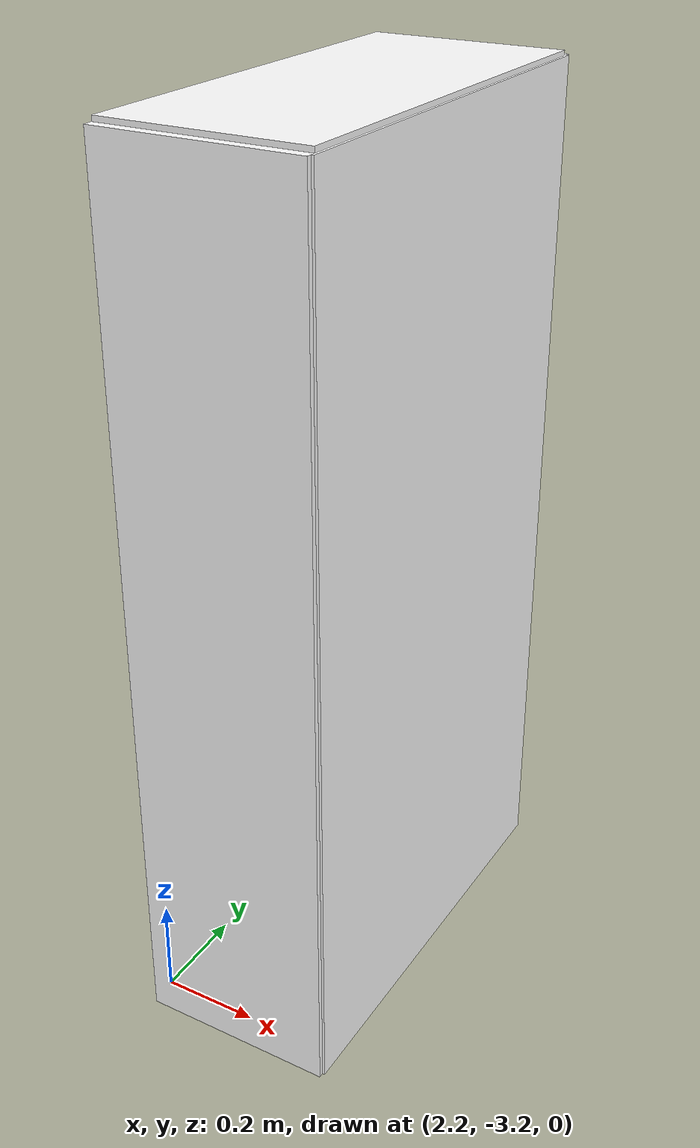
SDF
<?xml version="1.0" ?>
<sdf version="1.6">
<model name="bookshelf">
    <static>0</static>
    <link name="link">
    <inertial>
        <mass>1.000000</mass>
    </inertial>
    <collision name="back">
        <pose>0.000000 0.005000 0.900000 0.000000 0.000000 0.000000</pose>
        <geometry>
        <box>
            <size>0.900000 0.010000 1.800000</size>
        </box>
        </geometry>
    </collision>
    <visual name="visual1">
        <pose>0.000000 0.005000 0.900000 0.000000 0.000000 0.000000</pose>
        <geometry>
        <box>
            <size>0.900000 0.010000 1.800000</size>
        </box>
        </geometry>
        <material>
            <ambient>1 1 1 1</ambient>
            <diffuse>1 1 1 1</diffuse>
            <pbr>
            <metal>
                <albedo_map>/home/marat/exchange_project_ws/src/collab_industrial_research/gz_world_package/models/bookshelf/materials/textures/white_table.png</albedo_map>
                <roughness>0.8</roughness>
                <metalness>0.1</metalness>
            </metal>
            </pbr>
        </material>
    </visual>
    <collision name="left_side">
        <pose>0.450000 -0.195000 0.900000 0.000000 0.000000 0.000000</pose>
        <geometry>
        <box>
            <size>0.020000 0.400000 1.800000</size>
        </box>
        </geometry>
    </collision>
    <visual name="visual2">
        <pose>0.450000 -0.195000 0.900000 0.000000 0.000000 0.000000</pose>
        <geometry>
        <box>
            <size>0.020000 0.400000 1.800000</size>
        </box>
        </geometry>
        <material>
            <ambient>1 1 1 1</ambient>
            <diffuse>1 1 1 1</diffuse>
            <pbr>
            <metal>
                <albedo_map>/home/marat/exchange_project_ws/src/collab_industrial_research/gz_world_package/models/bookshelf/materials/textures/white_table.png</albedo_map>
                <roughness>0.8</roughness>
                <metalness>0.1</metalness>
            </metal>
            </pbr>
        </material>
    </visual>
    <collision name="right_side">
        <pose>-0.450000 -0.195000 0.900000 0.000000 0.000000 0.000000</pose>
        <geometry>
        <box>
            <size>0.020000 0.400000 1.800000</size>
        </box>
        </geometry>
    </collision>
    <visual name="visual3">
        <pose>-0.450000 -0.195000 0.900000 0.000000 0.000000 0.000000</pose>
        <geometry>
        <box>
            <size>0.020000 0.400000 1.800000</size>
        </box>
        </geometry>
        <material>
            <ambient>1 1 1 1</ambient>
            <diffuse>1 1 1 1</diffuse>
            <pbr>
            <metal>
                <albedo_map>/home/marat/exchange_project_ws/src/collab_industrial_research/gz_world_package/models/bookshelf/materials/textures/white_table.png</albedo_map>
                <roughness>0.8</roughness>
                <metalness>0.1</metalness>
            </metal>
            </pbr>
        </material>
    </visual>
    <collision name="bottom">
        <pose>0.000000 -0.195000 0.40000 0.000000 0.000000 0.000000</pose>
        <geometry>
        <box>
            <size>0.880000 0.400000 0.8000</size>
        </box>
        </geometry>
    </collision>
    <visual name="visual4">
        <pose>0.000000 -0.195000 0.40000 0.000000 0.000000 0.000000</pose>
        <geometry>
        <box>
            <size>0.880000 0.400000 0.80000</size>
        </box>
        </geometry>
        <material>
            <ambient>1 1 1 1</ambient>
            <diffuse>1 1 1 1</diffuse>
            <pbr>
            <metal>
                <albedo_map>/home/marat/exchange_project_ws/src/collab_industrial_research/gz_world_package/models/bookshelf/materials/textures/white_table.png</albedo_map>
                <roughness>0.8</roughness>
                <metalness>0.1</metalness>
            </metal>
            </pbr>
        </material>
    </visual>
    <collision name="top">
        <pose>0.000000 -0.195000 1.80000 0.000000 0.000000 0.000000</pose>
        <geometry>
        <box>
            <size>0.880000 0.400000 0.020000</size>
        </box>
        </geometry>
    </collision>
    <visual name="visual5">
        <pose>0.000000 -0.195000 1.80000 0.000000 0.000000 0.000000</pose>
        <geometry>
        <box>
            <size>0.880000 0.400000 0.020000</size>
        </box>
        </geometry>
        <material>
            <ambient>1 1 1 1</ambient>
            <diffuse>1 1 1 1</diffuse>
            <pbr>
            <metal>
                <albedo_map>/home/marat/exchange_project_ws/src/collab_industrial_research/gz_world_package/models/bookshelf/materials/textures/white_table.png</albedo_map>
                <roughness>0.8</roughness>
                <metalness>0.1</metalness>
            </metal>
            </pbr>
        </material>
    </visual>

    <collision name="high_shelf">
        <pose>0.000000 -0.195000 1.200000 0.000000 0.000000 0.000000</pose>
        <geometry>
        <box>
            <size>0.880000 0.400000 0.020000</size>
        </box>
        </geometry>
    </collision>
    <visual name="visual7">
        <pose>0.000000 -0.195000 1.20000 0.000000 0.000000 0.000000</pose>
        <geometry>
        <box>
            <size>0.880000 0.400000 0.020000</size>
        </box>
        </geometry>
        <material>
            <ambient>1 1 1 1</ambient>
            <diffuse>1 1 1 1</diffuse>
            <pbr>
            <metal>
                <albedo_map>/home/marat/exchange_project_ws/src/collab_industrial_research/gz_world_package/models/bookshelf/materials/textures/white_table.png</albedo_map>
                <roughness>0.8</roughness>
                <metalness>0.1</metalness>
            </metal>
            </pbr>
        </material>
    </visual>

        <collision name="high_shelf_2">
        <pose>0.000000 -0.195000 1.500000 0.000000 0.000000 0.000000</pose>
        <geometry>
        <box>
            <size>0.880000 0.400000 0.020000</size>
        </box>
        </geometry>
    </collision>
    <visual name="visual8">
        <pose>0.000000 -0.195000 1.500000 0.000000 0.000000 0.000000</pose>
        <geometry>
        <box>
            <size>0.880000 0.400000 0.020000</size>
        </box>
        </geometry>
        <material>
            <ambient>1 1 1 1</ambient>
            <diffuse>1 1 1 1</diffuse>
            <pbr>
            <metal>
                <albedo_map>/home/marat/exchange_project_ws/src/collab_industrial_research/gz_world_package/models/bookshelf/materials/textures/white_table.png</albedo_map>
                <roughness>0.8</roughness>
                <metalness>0.1</metalness>
            </metal>
            </pbr>
        </material>
    </visual>
    </link>
    <pose>2.6 -2.8 0.0 0.0 0.0 -1.57</pose>
</model>
</sdf>
